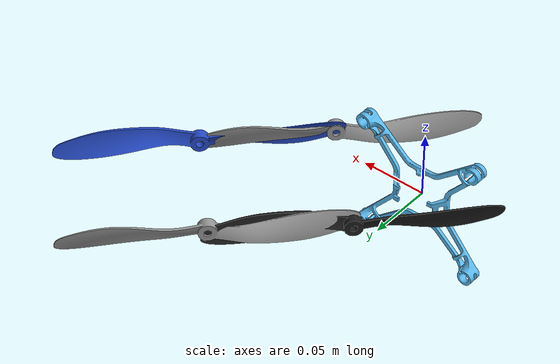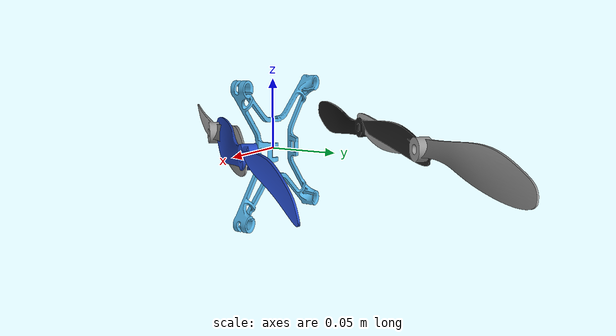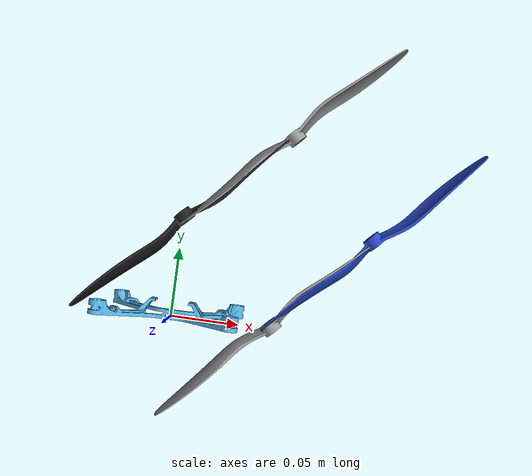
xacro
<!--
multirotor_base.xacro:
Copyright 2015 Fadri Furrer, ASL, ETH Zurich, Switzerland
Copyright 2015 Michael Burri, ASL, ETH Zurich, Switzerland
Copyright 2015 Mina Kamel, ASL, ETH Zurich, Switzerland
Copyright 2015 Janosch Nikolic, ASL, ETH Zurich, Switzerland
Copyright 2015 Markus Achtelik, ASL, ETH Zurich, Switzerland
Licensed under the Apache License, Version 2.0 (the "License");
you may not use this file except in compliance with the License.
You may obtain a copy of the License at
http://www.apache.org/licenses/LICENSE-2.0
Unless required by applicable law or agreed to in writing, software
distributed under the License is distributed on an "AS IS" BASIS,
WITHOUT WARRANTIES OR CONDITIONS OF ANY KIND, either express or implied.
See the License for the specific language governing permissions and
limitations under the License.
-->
<?xml version="1.0"?>

<robot name="edrone_gazebo" xmlns:xacro="http://ros.org/wiki/xacro">
  <!-- Properties -->
  <xacro:property name="namespace" value="edrone_gazebo" />
  <xacro:property name="rotor_velocity_slowdown_sim" value="10" />
  <xacro:property name="mesh_file" value="frame.dae" />
  <xacro:property name="mesh_scale" value="0.001 0.001 0.001"/>
  <xacro:property name="mesh" value="prop"/>  <!-- "propeller" -->
  <xacro:property name="mesh_scale_prop" value="0.001 0.001 0.001"/>
  <xacro:property name="mass" value="0.0085" /> <!-- [kg] -->
  <xacro:property name="body_width" value="0.14" />
  <xacro:property name="body_height" value="0.015" />
  <xacro:property name="mass_rotor" value="0.0037" /> <!-- [kg] -->
  <xacro:property name="arm_length" value="0.0675" />
  <xacro:property name="rotor_offset_top" value="0.01" />
  <xacro:property name="radius_rotor" value="0.0035" />
  <xacro:property name="motor_constant" value="2.39e-05" /> <!-- [kg.m/s^2] -->
  <xacro:property name="moment_constant" value="0.016" />
  <xacro:property name="time_constant_up" value="0.15" />
  <xacro:property name="time_constant_down" value="0.15" />
  <xacro:property name="max_rot_velocity" value="770" /> <!-- [rad/s] -->
  <xacro:property name="rotor_drag_coefficient" value="1.3858e-06" />
  <xacro:property name="rolling_moment_coefficient" value="0.000001" />
  <xacro:property name="color" value="DarkGrey" />

  <!-- Property Blocks -->
  <xacro:property name="body_inertia">
    <!-- [kg.m^2] [kg.m^2] [kg.m^2] [kg.m^2] [kg.m^2] [kg.m^2] -->
    <inertia ixx="1212.180604086" ixy="0.054623298" ixz="1.422272295" iyy="2434.164644974" iyz="0.079308392" izz="1238.767881216"/>
  </xacro:property>

  <!-- inertia of a single rotor, assuming it is a cuboid. Height=3mm, width=15mm -->
  <xacro:property name="rotor_inertia">
    <inertia
    ixx="${1/12 * mass_rotor * (0.015 * 0.015 + 0.003 * 0.003) * rotor_velocity_slowdown_sim}"
    iyy="${1/12 * mass_rotor * (4 * radius_rotor * radius_rotor + 0.003 * 0.003) * rotor_velocity_slowdown_sim}"
    izz="${1/12 * mass_rotor * (4 * radius_rotor * radius_rotor + 0.015 * 0.015) * rotor_velocity_slowdown_sim}"
    ixy="0.0" ixz="0.0"  iyz="0.0" /> <!-- [kg.m^2] [kg.m^2] [kg.m^2] [kg.m^2] [kg.m^2] [kg.m^2] -->
  </xacro:property>

  <!-- Included URDF Files -->
  <xacro:include filename="multirotor_base.xacro" />

  <!-- Instantiate multirotor_base_macro once -->
  <xacro:multirotor_base_macro
    robot_namespace="${namespace}"
    mass="${mass}"
    body_width="${body_width}"
    body_height="${body_height}"
    mesh_file="${mesh_file}"
    mesh_scale="${mesh_scale}"
    color="${color}">
    <xacro:insert_block name="body_inertia" />
  </xacro:multirotor_base_macro>

  <!-- Instantiate rotors -->
  <xacro:vertical_rotor
    robot_namespace="${namespace}"
    suffix="front"
    direction="CCW_45"

    motor_constant="${motor_constant}"
    moment_constant="${moment_constant}"
    parent="base_link"
    mass_rotor="${mass_rotor}"
    radius_rotor="${radius_rotor}"
    time_constant_up="${time_constant_up}"
    time_constant_down="${time_constant_down}"
    max_rot_velocity="${max_rot_velocity}"
    motor_number="0"
    rotor_drag_coefficient="${rotor_drag_coefficient}"
    rolling_moment_coefficient="${rolling_moment_coefficient}"
    mesh="prop"
    mesh_scale="${mesh_scale_prop}"
    color="Blue">
    <origin xyz="${arm_length} 0 ${rotor_offset_top}" rpy="0 0 0" />
    <xacro:insert_block name="rotor_inertia" />
  </xacro:vertical_rotor>

  <xacro:vertical_rotor
    robot_namespace="${namespace}"
    suffix="right"
    direction="CW_45"
    motor_constant="${motor_constant}"
    moment_constant="${moment_constant}"
    parent="base_link"
    mass_rotor="${mass_rotor}"
    radius_rotor="${radius_rotor}"
    time_constant_up="${time_constant_up}"
    time_constant_down="${time_constant_down}"
    max_rot_velocity="${max_rot_velocity}"
    motor_number="1"
    rotor_drag_coefficient="${rotor_drag_coefficient}"
    rolling_moment_coefficient="${rolling_moment_coefficient}"
    mesh="prop"
    mesh_scale="${mesh_scale_prop}"
    color="Grey">
    <origin xyz="0 -${arm_length} ${rotor_offset_top}" rpy="0 0 0" />
    <xacro:insert_block name="rotor_inertia" />
  </xacro:vertical_rotor>

  <xacro:vertical_rotor
    robot_namespace="${namespace}"
    suffix="back"
    direction="CCW_45"
    motor_constant="${motor_constant}"
    moment_constant="${moment_constant}"
    parent="base_link"
    mass_rotor="${mass_rotor}"
    radius_rotor="${radius_rotor}"
    time_constant_up="${time_constant_up}"
    time_constant_down="${time_constant_down}"
    max_rot_velocity="${max_rot_velocity}"
    motor_number="2"
    rotor_drag_coefficient="${rotor_drag_coefficient}"
    rolling_moment_coefficient="${rolling_moment_coefficient}"
    mesh="prop"
    mesh_scale="${mesh_scale_prop}"
    color="black">
    <origin xyz="-${arm_length} 0 ${rotor_offset_top}" rpy="0 0 0" />
    <xacro:insert_block name="rotor_inertia" />
  </xacro:vertical_rotor>

  <xacro:vertical_rotor
    robot_namespace="${namespace}"
    suffix="left"
    direction="CW_45"
    motor_constant="${motor_constant}"
    moment_constant="${moment_constant}"
    parent="base_link"
    mass_rotor="${mass_rotor}"
    radius_rotor="${radius_rotor}"
    time_constant_up="${time_constant_up}"
    time_constant_down="${time_constant_down}"
    max_rot_velocity="${max_rot_velocity}"
    motor_number="3"
    rotor_drag_coefficient="${rotor_drag_coefficient}"
    rolling_moment_coefficient="${rolling_moment_coefficient}"
    mesh="prop"
    mesh_scale="${mesh_scale_prop}"
    color="Grey">
    <origin xyz="0 ${arm_length} ${rotor_offset_top}" rpy="0 0 0" />
    <xacro:insert_block name="rotor_inertia" />
  </xacro:vertical_rotor>

</robot>

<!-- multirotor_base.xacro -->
<robot xmlns:xacro="http://ros.org/wiki/xacro">
  <!-- Main multirotor link -->
  <xacro:macro name="multirotor_base_macro"
    params="robot_namespace mass body_width body_height mesh_file mesh_scale color *inertia">

    <link name="base_link"></link>

    <joint name="base_joint" type="fixed">
      <origin xyz="0 0 0" rpy="0 0 0" />
      <parent link="base_link" />
      <child link="base_link_inertia" />
    </joint>

    <link name="base_link_inertia">
      <inertial>
        <mass value="${mass}" />  <!-- [kg] -->
        <origin xyz="0 0 0" />
        <xacro:insert_block name="inertia" />
      </inertial>

      <visual>
        <origin xyz="0 0 0" rpy="0 0 0" />
        <geometry>
          <mesh filename="package://urdf/meshes/${mesh_file}"
            scale="${mesh_scale}" />

        </geometry>
      </visual>

      <collision>
        <origin xyz="0 0 0" rpy="0 0 0" />
        <geometry>
          <box size="${body_width} ${body_width} ${body_height}" />
        </geometry>
      </collision>
    </link>

    <!-- attach multirotor_base_plugin to the base_link -->
    <gazebo>
      <plugin filename="librotors_gazebo_multirotor_base_plugin.so" name="rosbag">
        <robotNamespace>${robot_namespace}</robotNamespace>
        <linkName>base_link</linkName>
        <rotorVelocitySlowdownSim>${rotor_velocity_slowdown_sim}</rotorVelocitySlowdownSim>
      </plugin>
    </gazebo>

    <gazebo reference="base_link">
      <material>Gazebo/${color}</material>
    </gazebo>
  </xacro:macro>

  <!-- Rotor joint and link -->
  <xacro:macro name="vertical_rotor"
    params="robot_namespace suffix direction motor_constant moment_constant parent mass_rotor radius_rotor time_constant_up time_constant_down max_rot_velocity motor_number rotor_drag_coefficient rolling_moment_coefficient color mesh mesh_scale *origin *inertia">
    <joint name="rotor_${motor_number}_joint" type="continuous">
      <xacro:insert_block name="origin" />
      <axis xyz="0 0 1" />
      <!-- TODO(ff): not currently set because it's not yet supported -->
      <parent link="${parent}" />
      <child link="rotor_${motor_number}" />

    </joint>
    <!-- TODO(ff): not currently set because it's not yet supported -->
    <link name="rotor_${motor_number}">
      <inertial>
        <mass value="${mass_rotor}" /> <!-- [kg] -->
        <xacro:insert_block name="inertia" />
      </inertial>
      <visual>
        <geometry>

          <mesh filename="package://urdf/meshes/${mesh}_${direction}.dae"
            scale="${mesh_scale}" />
        </geometry>
      </visual>
      <collision>
        <geometry>
          <cylinder length="0.005" radius="${radius_rotor}" />
        </geometry>
      </collision>
    </link>
    <gazebo>
      <plugin name="${suffix}_motor_model" filename="librotors_gazebo_motor_model.so">
        <robotNamespace>${robot_namespace}</robotNamespace>
        <jointName>rotor_${motor_number}_joint</jointName>
        <linkName>rotor_${motor_number}</linkName>
        <turningDirection>${direction}</turningDirection>
        <timeConstantUp>${time_constant_up}</timeConstantUp>
        <timeConstantDown>${time_constant_down}</timeConstantDown>
        <maxRotVelocity>${max_rot_velocity}</maxRotVelocity>
        <motorConstant>${motor_constant}</motorConstant>
        <momentConstant>${moment_constant}</momentConstant>
        <commandSubTopic>gazebo/command/motor_speed</commandSubTopic>
        <motorNumber>${motor_number}</motorNumber>
        <rotorDragCoefficient>${rotor_drag_coefficient}</rotorDragCoefficient>
        <rollingMomentCoefficient>${rolling_moment_coefficient}</rollingMomentCoefficient>
        <motorSpeedPubTopic>motor_speed/${motor_number}</motorSpeedPubTopic>
        <rotorVelocitySlowdownSim>${rotor_velocity_slowdown_sim}</rotorVelocitySlowdownSim>
      </plugin>
    </gazebo>
    <gazebo reference="rotor_${motor_number}">
      <material>Gazebo/${color}</material>
    </gazebo>
  </xacro:macro>
</robot>
